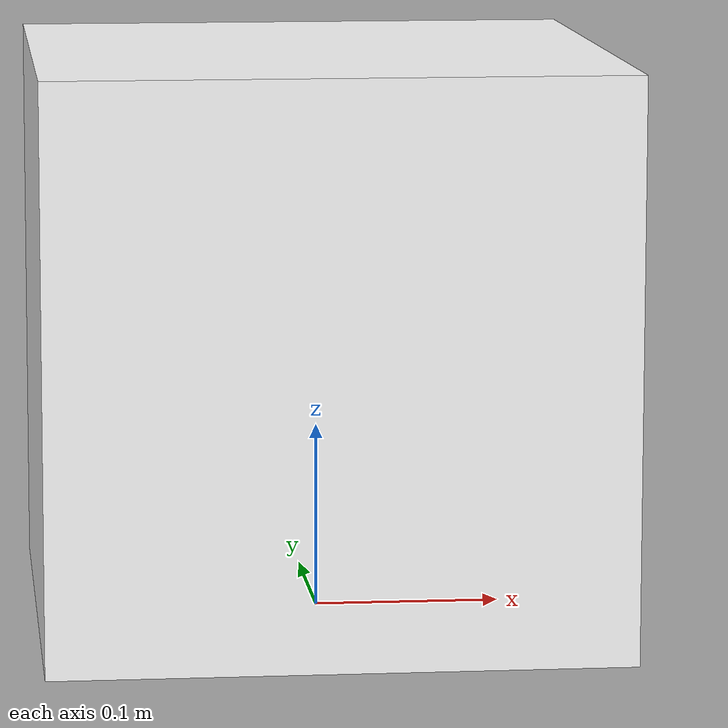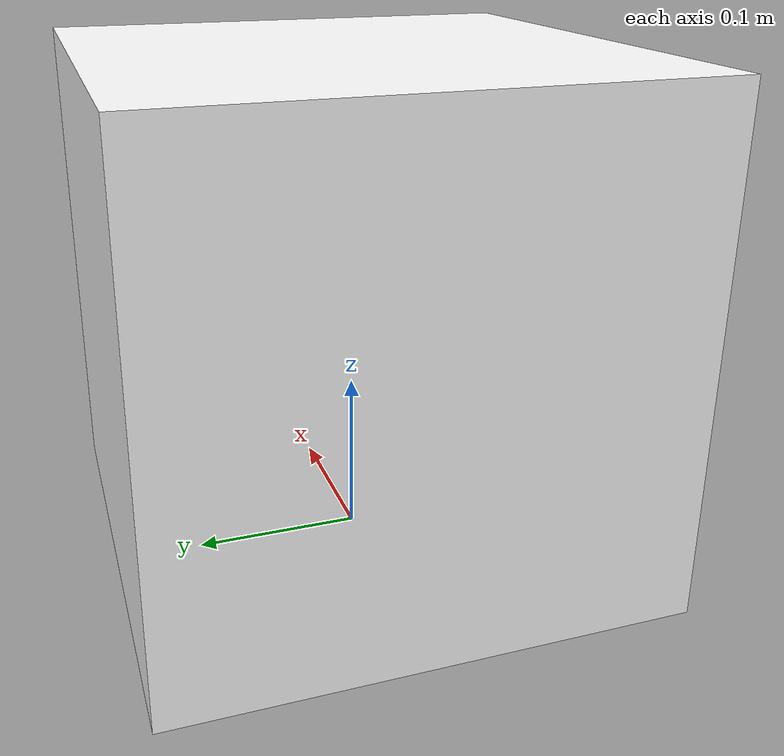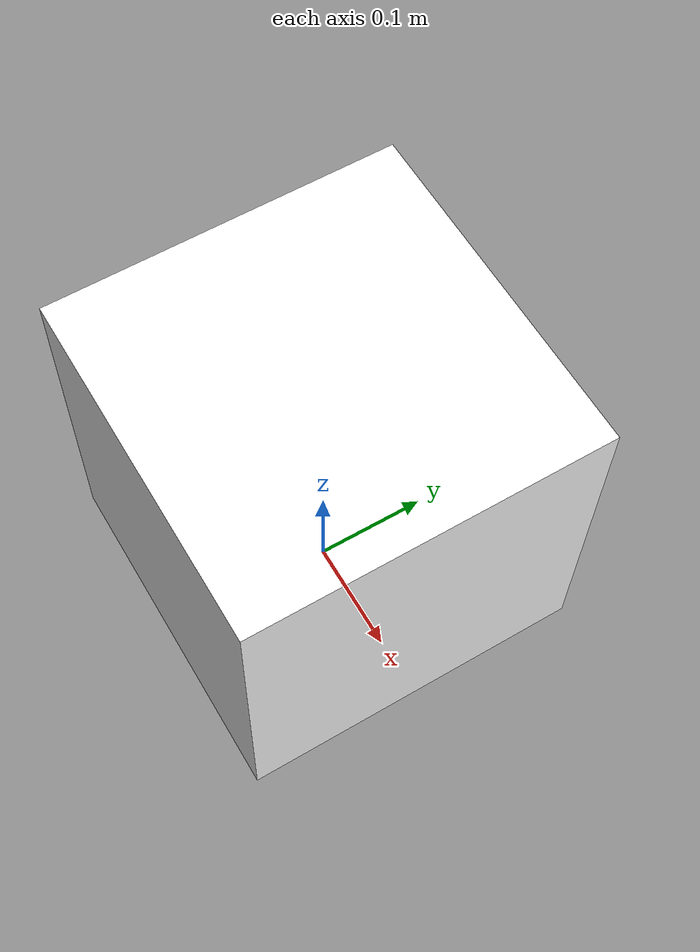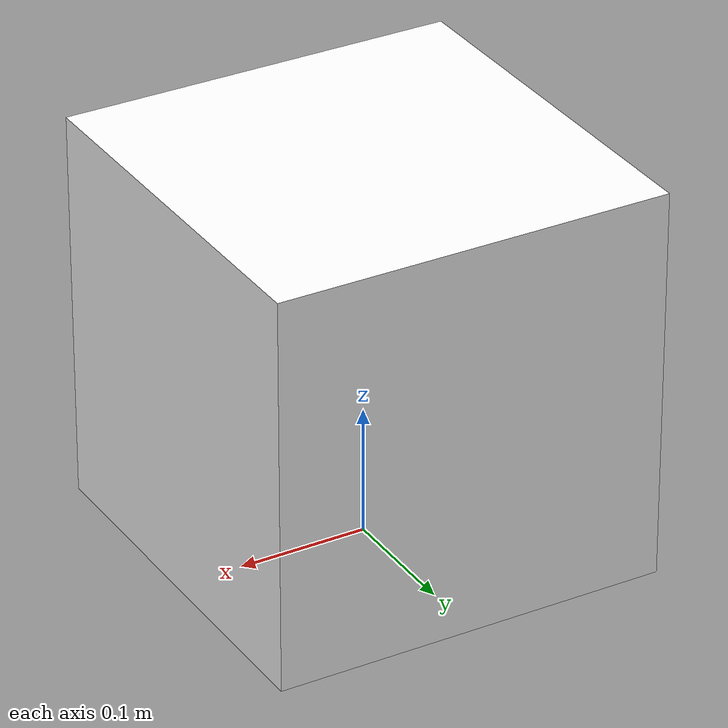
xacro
<?xml version='1.0'?>
<!-- obstacle: small_box (1ft x 1ft x 1ft) // URDF MODEL DEFINITION -->

<robot name="small_box" xmlns:xacro="http://www.ros.org/wiki/xacro">

  <xacro:property name="one_foot" value="0.3048" /> <!-- meters -->

  <xacro:include filename="$(find obstacles)/sdf/static.gazebo" />

  <link name='small_box'>
    <inertial>
      <mass value="0.837"/>
      <inertia
          ixx="0.0007576" ixy="0" ixz="0"
          iyy="0.0015486" iyz="0"
          izz="0.0017524"
      />
    </inertial>

    <collision>
      <origin xyz="0 0 ${one_foot/2}"/>
      <geometry>
        <box size="${one_foot} ${one_foot} ${one_foot}"/>
      </geometry>
    </collision>

    <visual>
      <origin xyz="0 0 ${one_foot/2}"/>
      <geometry>
        <box size="${one_foot} ${one_foot} ${one_foot}"/>
      </geometry>
      <material name="white">
        <color rgba="1 1 1 1"/>
      </material>
    </visual>

  </link>
</robot>
